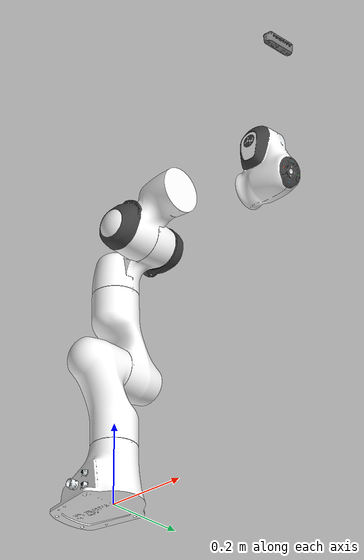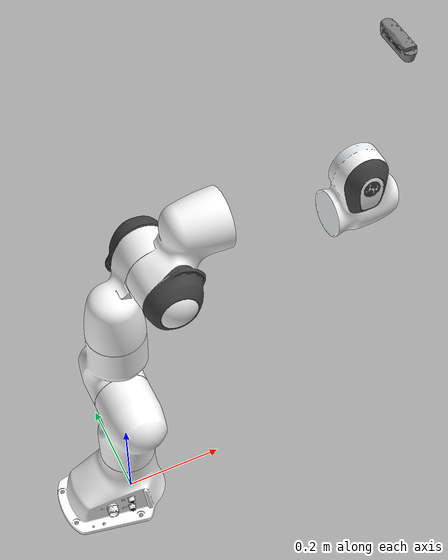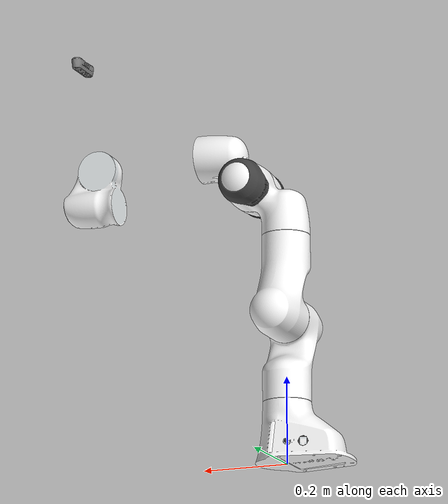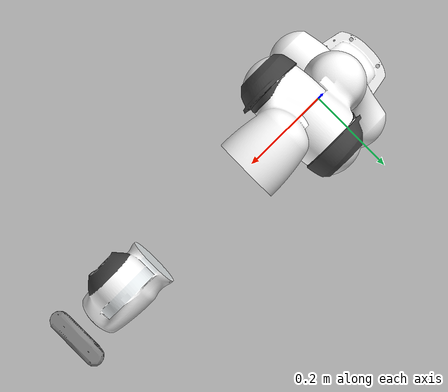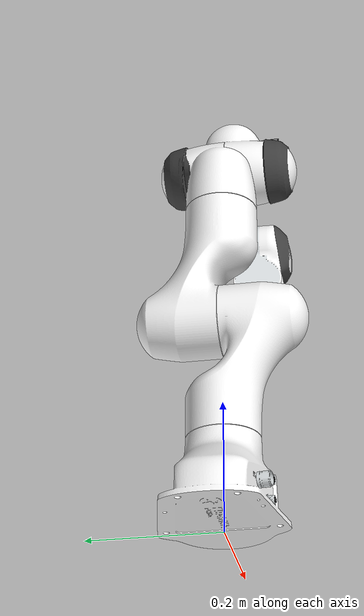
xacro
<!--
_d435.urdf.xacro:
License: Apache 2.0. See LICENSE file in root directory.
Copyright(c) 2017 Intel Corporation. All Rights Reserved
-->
<?xml version="1.0"?>
<robot xmlns:xacro="http://www.ros.org/wiki/xacro" name="panda">
  <xacro:arg name="robot_name" default="panda"/>
  <xacro:arg name="camera_name" default="camera"/>
  <xacro:arg name="publish_pointcloud" default="true"/>

  <xacro:include filename="$(find franka_panda_description)/robots/panda_arm_hand.urdf.xacro"/>

  <!-- Real Sense Camera -->
  <xacro:include filename="$(find elsa_simulator)/robots/_d435.urdf.xacro"/>
  <link name="camera_base">
  </link>
  <joint name="cam_joint" type="fixed">
    <parent link="panda_link0"/>
    <child link="camera_base"/>
  </joint>

  <xacro:sensor_d435 name="$(arg camera_name)" topics_ns="camera" parent="camera_base">
    <origin xyz="0.5 0 1" rpy="0 1.57 0" />
  </xacro:sensor_d435>

</robot>

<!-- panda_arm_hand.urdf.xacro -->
<robot xmlns:xacro="http://www.ros.org/wiki/xacro" name="panda">
  <xacro:arg name="robot_name" default="panda"/>
  <xacro:arg name="load_gripper" default="true"/>
  <xacro:arg name="load_gazebo" default="false"/>
  <xacro:arg name="use_gazebo_control" default="false"/>
  <xacro:arg name="connected_to" default=""/> <!-- If using a different frame with ${connected_to} param, make sure 'world' frame exists in the TF tree -->

  <xacro:include filename="$(find franka_panda_description)/robots/panda_arm.xacro"/>

  <xacro:if value="$(arg load_gripper)">
    <xacro:include filename="$(find franka_panda_description)/robots/hand.xacro"/>
    <xacro:hand ns="panda" rpy="0 0 ${-pi/4}" connected_to="panda_link8"/>
  </xacro:if>

  <xacro:if value="$(arg load_gazebo)">
    <xacro:include filename="$(find franka_panda_description)/robots/panda.gazebo.xacro"/>
    <xacro:include filename="$(find franka_panda_description)/robots/panda.transmission.xacro"/>

    <xacro:panda_arm in_gazebo="true"  connected_to="$(arg connected_to)"/>
    <xacro:panda_gazebo robot_name="$(arg robot_name)" load_gripper="$(arg load_gripper)"/>
    <xacro:panda_transmission robot_name="$(arg robot_name)" load_gripper="$(arg load_gripper)" use_gazebo_control="$(arg use_gazebo_control)"/>
  </xacro:if>

  <xacro:unless value="$(arg load_gazebo)">
    <xacro:panda_arm />
  </xacro:unless>

</robot>

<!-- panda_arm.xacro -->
<robot xmlns:xacro="http://www.ros.org/wiki/xacro" name="panda">
  <xacro:property name="camera_link" value="2.02" /> <!-- Size of square 'camera' box -->
  <xacro:property name="axel_offset" value="0.01" /> <!-- Space btw top of beam and the each joint -->
  <xacro:macro name="panda_arm" params="arm_id:='panda' description_pkg:='franka_panda_description' connected_to:='' in_gazebo='false' xyz:='0 0 0' rpy:='0 0 0'">
    <!-- If using custom frame with ${connected_to} param, make sure 'world' frame exists in its TF tree -->
    <xacro:if value="${connected_to == ''}">
      <link name="world" />
      <xacro:property name="base_frame_name" value="world"/>
    </xacro:if>
    <xacro:unless value="${connected_to == ''}">
      <xacro:property name="base_frame_name" value="${connected_to}"/>
    </xacro:unless>
    <joint name="${arm_id}_to_${base_frame_name}" type="fixed">
      <parent link="${base_frame_name}"/>
      <child link="${arm_id}_link0"/>
      <origin rpy="${rpy}" xyz="${xyz}"/>
      <xacro:unless value="${in_gazebo == 'false'}">
        <dynamics damping="1.0"/>
      </xacro:unless>
    </joint>
    <link name="${arm_id}_link0">
      <visual>
        <geometry>
          <mesh filename="package://${description_pkg}/meshes/visual/link0.dae"/>
        </geometry>
      </visual>
      <collision>
        <geometry>
          <mesh filename="package://${description_pkg}/meshes/collision/link0.stl"/>
        </geometry>
      </collision>
      <xacro:unless value="${in_gazebo == 'false'}">
        <inertial>
          <origin xyz="0 0 0" rpy="0 0 0"/>
          <mass value="3.06"/>
          <inertia ixx="0.3" ixy="0.0" ixz="0.0" iyy="0.3" iyz="0.0" izz="0.3"/>
        </inertial>
      </xacro:unless>
    </link>
    <link name="${arm_id}_link1">
      <visual>
        <geometry>
          <mesh filename="package://${description_pkg}/meshes/visual/link1.dae"/>
        </geometry>
      </visual>
      <collision>
        <geometry>
          <mesh filename="package://${description_pkg}/meshes/collision/link1.stl"/>
        </geometry>
      </collision>
      <inertial>
        <origin xyz="3.875e-03 2.081e-03 -0.1750" rpy="0 0 0"/>
        <mass value="4.970684"/>
        <inertia ixx="7.0337e-01" ixy="-1.3900e-04" ixz="6.7720e-03" iyy="7.0661e-01" iyz="1.9169e-02" izz="9.1170e-03"/>
      </inertial>
    </link>
    <joint name="${arm_id}_joint1" type="revolute">
      <safety_controller k_position="100.0" k_velocity="40.0" soft_lower_limit="-2.8973" soft_upper_limit="2.8973"/>
      <origin rpy="0 0 0" xyz="0 0 0.333"/>
      <parent link="${arm_id}_link0"/>
      <child link="${arm_id}_link1"/>
      <axis xyz="0 0 1"/>
      <limit effort="87" lower="-2.8973" upper="2.8973" velocity="2.1750"/>
      <dynamics damping="10.0" friction="5.0"/>
    </joint>
    <link name="${arm_id}_link2">
      <visual>
        <geometry>
          <mesh filename="package://${description_pkg}/meshes/visual/link2.dae"/>
        </geometry>
      </visual>
      <collision>
        <geometry>
          <mesh filename="package://${description_pkg}/meshes/collision/link2.stl"/>
        </geometry>
      </collision>
      <inertial>
        <origin xyz="-3.141e-03 -2.872e-02 3.495e-03" rpy="0 0 0"/>
        <mass value="0.646926"/>
        <inertia ixx="7.9620e-03" ixy="-3.9250e-03" ixz="1.0254e-02" iyy="2.8110e-02" iyz="7.0400e-04" izz="2.5995e-02"/>
      </inertial>
    </link>
    <joint name="${arm_id}_joint2" type="revolute">
      <safety_controller k_position="100.0" k_velocity="40.0" soft_lower_limit="-1.7628" soft_upper_limit="1.7628"/>
      <origin rpy="${-pi/2} 0 0" xyz="0 0 0"/>
      <parent link="${arm_id}_link1"/>
      <child link="${arm_id}_link2"/>
      <axis xyz="0 0 1"/>
      <limit effort="87" lower="-1.7628" upper="1.7628" velocity="2.1750"/>
      <dynamics damping="5.0" friction="2.0"/>
    </joint>
    <link name="${arm_id}_link3">
      <visual>
        <geometry>
          <mesh filename="package://${description_pkg}/meshes/visual/link3.dae"/>
        </geometry>
      </visual>
      <collision>
        <geometry>
          <mesh filename="package://${description_pkg}/meshes/collision/link3.stl"/>
        </geometry>
      </collision>
      <inertial>
        <origin xyz="2.7518e-02 3.9252e-02 -6.6502e-02" rpy="0 0 0"/>
        <mass value="3.228604"/>
        <inertia ixx="3.7242e-02" ixy="-4.7610e-03" ixz="-1.1396e-02" iyy="3.6155e-02" iyz="-1.2805e-02" izz="1.0830e-02"/>
      </inertial>
    </link>
    <joint name="${arm_id}_joint3" type="revolute">
      <safety_controller k_position="100.0" k_velocity="40.0" soft_lower_limit="-2.8973" soft_upper_limit="2.8973"/>
      <origin rpy="${pi/2} 0 0" xyz="0 -0.316 0"/>
      <parent link="${arm_id}_link2"/>
      <child link="${arm_id}_link3"/>
      <axis xyz="0 0 1"/>
      <limit effort="87" lower="-2.8973" upper="2.8973" velocity="2.1750"/>
      <dynamics damping="5.0" friction="2.0"/>
    </joint>
    <link name="${arm_id}_link4">
      <visual>
        <geometry>
          <mesh filename="package://${description_pkg}/meshes/visual/link4.dae"/>
        </geometry>
      </visual>
      <collision>
        <geometry>
          <mesh filename="package://${description_pkg}/meshes/collision/link4.stl"/>
        </geometry>
      </collision>
      <inertial>
        <origin xyz="-5.317e-02 1.04419e-01 2.7454e-02" rpy="0 0 0"/>
        <mass value="3.587895"/>
        <inertia ixx="2.5853e-02" ixy="7.7960e-03" ixz="-1.3320e-03" iyy="1.9552e-02" iyz="8.6410e-03" izz="2.8323e-02"/>
      </inertial>
    </link>
    <joint name="${arm_id}_joint4" type="revolute">
      <safety_controller k_position="100.0" k_velocity="40.0" soft_lower_limit="-3.0718" soft_upper_limit="-0.0698"/>
      <origin rpy="${pi/2} 0 0" xyz="0.0825 0 0"/>
      <parent link="${arm_id}_link3"/>
      <child link="${arm_id}_link4"/>
      <axis xyz="0 0 1"/>
      <limit effort="87" lower="-3.0718" upper="-0.0698" velocity="2.1750"/>
      <dynamics damping="1.0" friction="0.5"/>
    </joint>
    <link name="${arm_id}_link5">
      <inertial>
        <origin xyz="-1.1953e-02 4.1065e-02 -3.8437e-02" rpy="0 0 0"/>
        <mass value="1.225946"/>
        <inertia ixx="3.5549e-02" ixy="-2.1170e-03" ixz="-4.0370e-03" iyy="2.9474e-02" iyz="2.2900e-04" izz="8.6270e-03"/>
      </inertial>
    </link>
    <joint name="${arm_id}_joint5" type="revolute">
      <safety_controller k_position="100.0" k_velocity="40.0" soft_lower_limit="-2.8973" soft_upper_limit="2.8973"/>
      <origin rpy="${-pi/2} 0 0" xyz="-0.0825 0.384 0"/>
      <parent link="${arm_id}_link4"/>
      <child link="${arm_id}_link5"/>
      <axis xyz="0 0 1"/>
      <limit effort="12" lower="-2.8973" upper="2.8973" velocity="2.6100"/>
      <dynamics damping="2.0" friction="1.0"/>
    </joint>
    <link name="${arm_id}_link6">
      <visual>
        <geometry>
          <mesh filename="package://${description_pkg}/meshes/visual/link6.dae"/>
        </geometry>
      </visual>
      <collision>
         <geometry>
          <box size="0.1 0.07 0.06"/>
        </geometry>
        <origin rpy="0 0 0" xyz="0.04 0.01 0.0"/>
      </collision>
      <inertial>
        <origin xyz="6.0149e-02 -1.4117e-02 -1.0517e-02" rpy="0 0 0"/>
        <mass value="1.666555"/>
        <inertia ixx="1.9640e-03" ixy="1.0900e-04" ixz="-1.1580e-03" iyy="4.3540e-03" iyz="3.4100e-04" izz="5.4330e-03"/>
      </inertial>
    </link>
    <joint name="${arm_id}_joint6" type="revolute">
      <safety_controller k_position="100.0" k_velocity="40.0" soft_lower_limit="-0.0175" soft_upper_limit="3.7525"/>
      <origin rpy="${pi/2} 0 0" xyz="0 0 0"/>
      <parent link="${arm_id}_link5"/>
      <child link="${arm_id}_link6"/>
      <axis xyz="0 0 1"/>
      <limit effort="12" lower="-0.0175" upper="3.7525" velocity="2.6100"/>
      <dynamics damping="1.0" friction="0.5"/>
    </joint>
    <link name="${arm_id}_link7">
      <inertial>
        <origin xyz="1.0517e-02 -4.252e-03 6.1597e-02" rpy="0 0 0"/>
        <mass value="7.35522e-01"/>
        <inertia ixx="1.2516e-02" ixy="-4.2800e-04" ixz="-1.1960e-03" iyy="1.0027e-02" iyz="-7.4100e-04" izz="4.8150e-03"/>
      </inertial>
    </link>
    <joint name="${arm_id}_joint7" type="revolute">
      <safety_controller k_position="100.0" k_velocity="40.0" soft_lower_limit="-2.8973" soft_upper_limit="2.8973"/>
      <origin rpy="${pi/2} 0 0" xyz="0.088 0 0"/>
      <parent link="${arm_id}_link6"/>
      <child link="${arm_id}_link7"/>
      <axis xyz="0 0 1"/>
      <limit effort="12" lower="-2.8973" upper="2.8973" velocity="2.6100"/>
      <dynamics damping="1.0" friction="0.5"/>
    </joint>
    <link name="${arm_id}_link8">
      <inertial>
        <origin xyz="0 0 0" rpy="0 0 0"/>
        <mass value="0.0"/>
        <inertia ixx="0.001" ixy="0.0" ixz="0.0" iyy="0.001" iyz="0.0" izz="0.001"/>
      </inertial>
    </link>
    <joint name="${arm_id}_joint8" type="fixed">
    <origin rpy="0 0 0" xyz="0 0 0.107"/>
      <parent link="${arm_id}_link7"/>
      <child link="${arm_id}_link8"/>
      <axis xyz="0 0 0"/>
    </joint>

    <!-- CAMERA -->

  </xacro:macro>
</robot>

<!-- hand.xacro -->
<robot xmlns:xacro="http://www.ros.org/wiki/xacro" name="hand">
  <xacro:property name="camera_link" value="0.02" /> <!-- Size of square 'camera' box -->
  <xacro:property name="axel_offset" value="0.01" /> <!-- Space btw top of beam and the each joint -->
  <xacro:include filename="$(find franka_panda_description)/robots/materials.xacro" />

  <xacro:macro name="hand" params="connected_to:='' ns:='' rpy:='0 0 0' xyz:='0 0 0' ">
    <xacro:unless value="${connected_to == ''}">
      <joint name="${ns}_hand_joint" type="fixed">
        <parent link="${connected_to}"/>
        <child link="${ns}_hand"/>
        <origin xyz="${xyz}" rpy="${rpy}"/>
      </joint>
    </xacro:unless>
    <link name="${ns}_hand">
      <inertial>
        <origin rpy="0 0 0" xyz="0 0.0015244 0.0275912"/>
        <mass value="0.73"/>
        <inertia ixx="0.00278560230025" ixy="0.0" ixz="0.0" iyy="0.000400033405336" iyz="0.0" izz="0.00256378041832"/>
      </inertial>
    </link>
    <link name="${ns}_leftfinger">
      <inertial>
        <origin rpy="0 0 0" xyz="0 0.0145644 0.0227941"/>
        <mass value="0.1"/>
        <inertia ixx="3.01220925051e-05" ixy="0.0" ixz="0.0" iyy="2.95873808038e-05" iyz="0.0" izz="6.95125211657e-06"/>
      </inertial>
    </link>
    <link name="${ns}_rightfinger">
      <inertial>
        <origin rpy="0 0 3.141592653589793" xyz="0 -0.0145644 0.0227941"/>
        <mass value="0.1"/>
        <inertia ixx="3.01220925051e-05" ixy="0.0" ixz="0.0" iyy="2.95873808038e-05" iyz="0.0" izz="6.95125211657e-06"/>
      </inertial>
    </link>
    <joint name="${ns}_finger_joint1" type="prismatic">
      <parent link="${ns}_hand"/>
      <child link="${ns}_leftfinger"/>
      <origin xyz="0 0 0.0584" rpy="0 0 0"/>
      <axis xyz="0 1 0"/>
      <limit effort="20" lower="0.0" upper="0.04" velocity="0.2"/>
      <dynamics damping="500.0" friction="0.0"/>
    </joint>
    <joint name="${ns}_finger_joint2" type="prismatic">
      <parent link="${ns}_hand"/>
      <child link="${ns}_rightfinger"/>
      <origin xyz="0 0 0.0584" rpy="0 0 0"/>
      <axis xyz="0 -1 0"/>
      <limit effort="20" lower="0.0" upper="0.04" velocity="0.2"/>
      <dynamics damping="500.0" friction="0.0"/>
      <mimic joint="${ns}_finger_joint1" />
    </joint>

  </xacro:macro>
</robot>

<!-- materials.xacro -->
<material name="Red">
    <color rgba="${255/255} ${0/255} ${0/255} 1.0"/>
  </material>

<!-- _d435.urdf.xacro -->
<robot name="sensor_d435" xmlns:xacro="http://ros.org/wiki/xacro">
  <!--File includes-->
  <xacro:include filename="$(find elsa_simulator)/robots/_d435.gazebo.xacro"/>

  <xacro:macro name="sensor_d435" params="name:=camera topics_ns:=camera parent *origin publish_pointcloud:=true">
    <xacro:property name="M_PI" value="3.1415926535897931" />

    <!-- The following values are approximate, and the camera node
     publishing TF values with actual calibrated camera extrinsic values -->
    <xacro:property name="d435_cam_depth_to_left_ir_offset" value="0.0"/>
    <xacro:property name="d435_cam_depth_to_right_ir_offset" value="-0.050"/>
    <xacro:property name="d435_cam_depth_to_color_offset" value="0.015"/>

    <!-- The following values model the aluminum peripherial case for the
    D435 camera, with the camera joint represented by the actual
    peripherial camera tripod mount -->
    <xacro:property name="d435_cam_width" value="0.090"/>
    <xacro:property name="d435_cam_height" value="0.025"/>
    <xacro:property name="d435_cam_depth" value="0.02505"/>
    <xacro:property name="d435_cam_mount_from_center_offset" value="0.0149"/>

    <!-- The following offset is relative the the physical D435 camera peripherial
    camera tripod mount -->
    <xacro:property name="d435_cam_depth_px" value="${d435_cam_mount_from_center_offset}"/>
    <xacro:property name="d435_cam_depth_py" value="0.0175"/>
    <xacro:property name="d435_cam_depth_pz" value="${d435_cam_height/2}"/>

    <material name="${name}_aluminum">
    <color rgba="0.5 0.5 0.5 1"/>
    </material>

    <!-- camera body, with origin at bottom screw mount -->
    <joint name="${name}_joint" type="fixed">
      <xacro:insert_block name="origin" />
      <parent link="${parent}"/>
      <child link="${name}_bottom_screw_frame" />
    </joint>
    <link name="${name}_bottom_screw_frame"/>

    <joint name="${name}_link_joint" type="fixed">
      <origin xyz="0 ${d435_cam_depth_py} ${d435_cam_depth_pz}" rpy="0 0 0"/>
      <parent link="${name}_bottom_screw_frame"/>
      <child link="${name}_link" />
    </joint>

    <link name="${name}_link">
      <visual>
      <origin xyz="${d435_cam_mount_from_center_offset} ${-d435_cam_depth_py} 0" rpy="${M_PI/2} 0 ${M_PI/2}"/>
        <geometry>
          <mesh filename="package://realsense2_description/meshes/d435.dae" />
        </geometry>
        <material name="${name}_aluminum"/>
      </visual>
      <collision>
        <origin xyz="0 ${-d435_cam_depth_py} 0" rpy="0 0 0"/>
        <geometry>
        <box size="${d435_cam_depth} ${d435_cam_width} ${d435_cam_height}"/>
        </geometry>
      </collision>
      <inertial>
        <!-- The following are not reliable values, and should not be used for modeling -->
        <mass value="0.564" />
        <origin xyz="0 0 0" />
        <inertia ixx="0.003881243" ixy="0.0" ixz="0.0" iyy="0.000498940" iyz="0.0" izz="0.003879257" />
      </inertial>
    </link>

    <!-- camera depth joints and links -->
    <joint name="${name}_depth_joint" type="fixed">
      <origin xyz="0 0 0" rpy="0 0 0"/>
      <parent link="${name}_link"/>
      <child link="${name}_depth_frame" />
    </joint>
    <link name="${name}_depth_frame"/>

    <joint name="${name}_depth_optical_joint" type="fixed">
      <origin xyz="0 0 0" rpy="${-M_PI/2} 0 ${-M_PI/2}" />
      <parent link="${name}_depth_frame" />
      <child link="${name}_depth_optical_frame" />
    </joint>
    <link name="${name}_depth_optical_frame"/>

    <!-- camera left IR joints and links -->
    <joint name="${name}_left_ir_joint" type="fixed">
      <origin xyz="0 ${d435_cam_depth_to_left_ir_offset} 0" rpy="0 0 0" />
      <parent link="${name}_depth_frame" />
      <child link="${name}_left_ir_frame" />
    </joint>
    <link name="${name}_left_ir_frame"/>

    <joint name="${name}_left_ir_optical_joint" type="fixed">
      <origin xyz="0 0 0" rpy="${-M_PI/2} 0 ${-M_PI/2}" />
      <parent link="${name}_left_ir_frame" />
      <child link="${name}_left_ir_optical_frame" />
    </joint>
    <link name="${name}_left_ir_optical_frame"/>

    <!-- camera right IR joints and links -->
    <joint name="${name}_right_ir_joint" type="fixed">
      <origin xyz="0 ${d435_cam_depth_to_right_ir_offset} 0" rpy="0 0 0" />
      <parent link="${name}_depth_frame" />
      <child link="${name}_right_ir_frame" />
    </joint>
    <link name="${name}_right_ir_frame"/>

    <joint name="${name}_right_ir_optical_joint" type="fixed">
      <origin xyz="0 0 0" rpy="${-M_PI/2} 0 ${-M_PI/2}" />
      <parent link="${name}_right_ir_frame" />
      <child link="${name}_right_ir_optical_frame" />
    </joint>
    <link name="${name}_right_ir_optical_frame"/>

    <!-- camera color joints and links -->
    <joint name="${name}_color_joint" type="fixed">
      <origin xyz="0 ${d435_cam_depth_to_color_offset} 0" rpy="0 0 0" />
      <parent link="${name}_depth_frame" />
      <child link="${name}_color_frame" />
    </joint>
    <link name="${name}_color_frame"/>

    <joint name="${name}_color_optical_joint" type="fixed">
      <origin xyz="0 0 0" rpy="${-M_PI/2} 0 ${-M_PI/2}" />
      <parent link="${name}_color_frame" />
      <child link="${name}_color_optical_frame" />
    </joint>
    <link name="${name}_color_optical_frame"/>

    <!-- Realsense Gazebo Plugin -->
    <xacro:gazebo_d435 camera_name="${name}" reference_link="${name}_link" topics_ns="${topics_ns}" depth_optical_frame="${name}_depth_optical_frame" color_optical_frame="${name}_color_optical_frame" infrared1_optical_frame="${name}_left_ir_optical_frame" infrared2_optical_frame="${name}_right_ir_optical_frame" publish_pointcloud="${publish_pointcloud}"/>

  </xacro:macro>
</robot>
